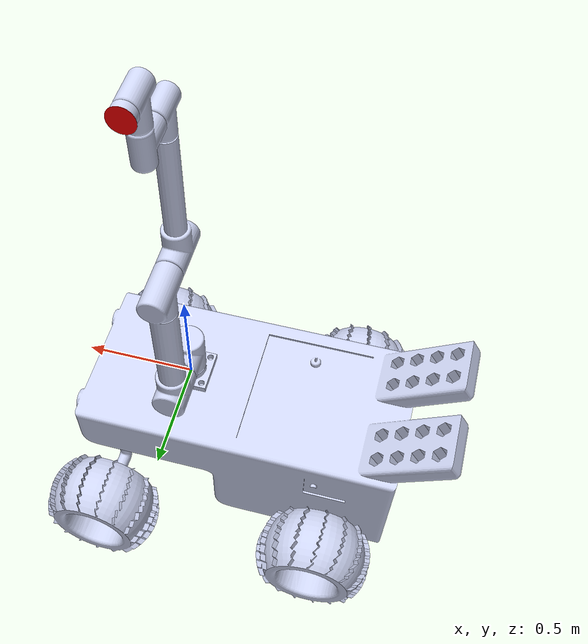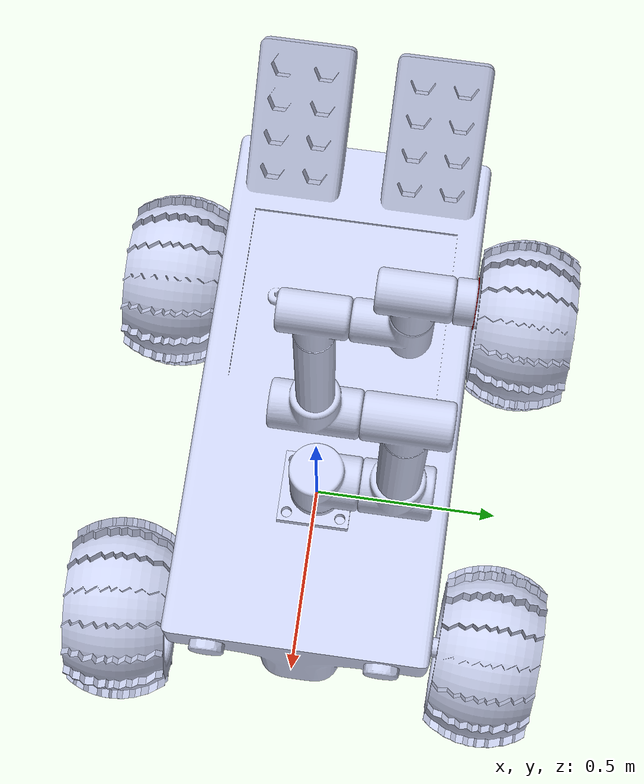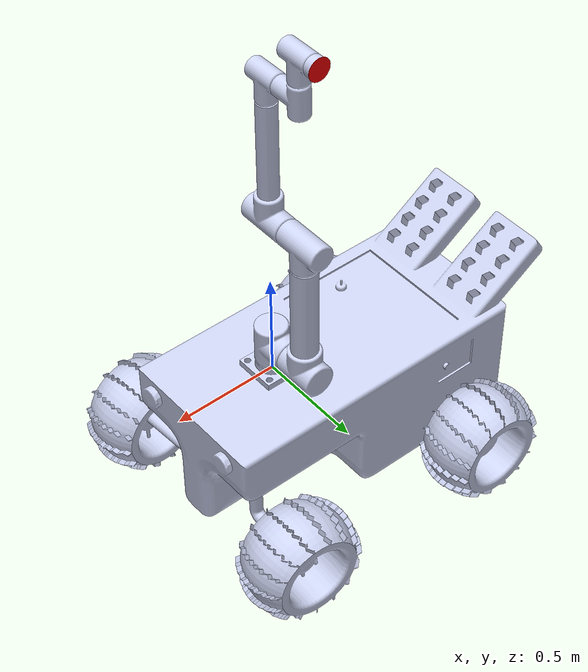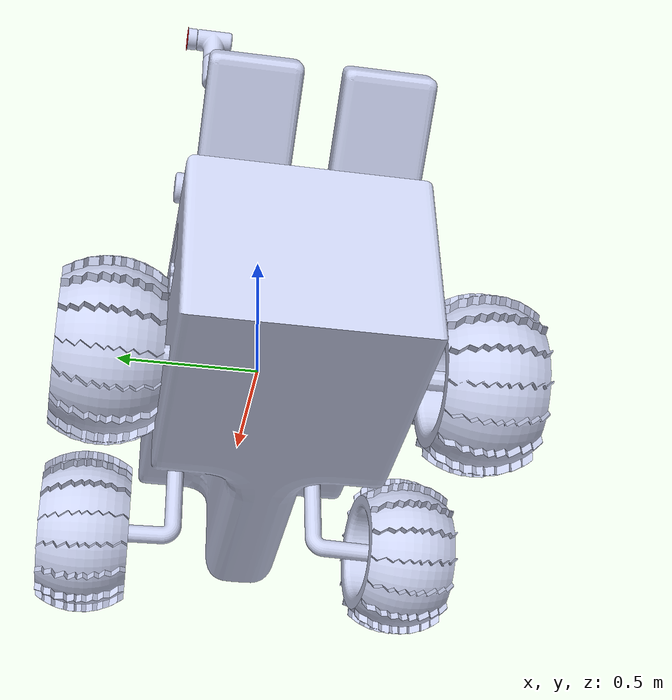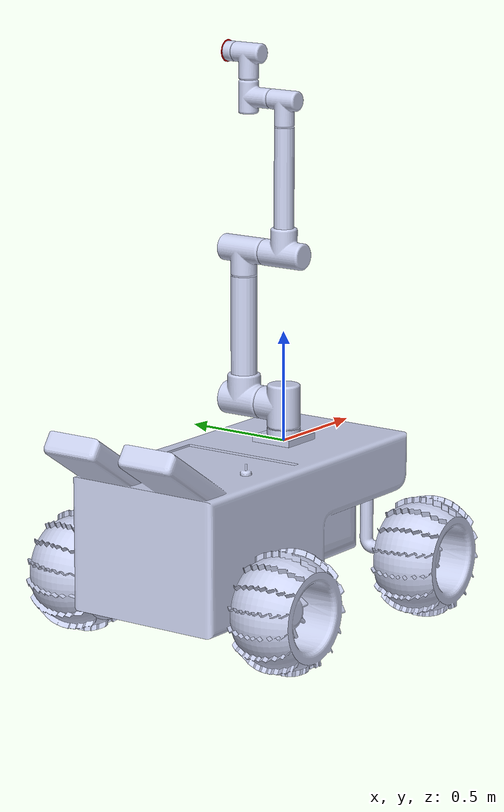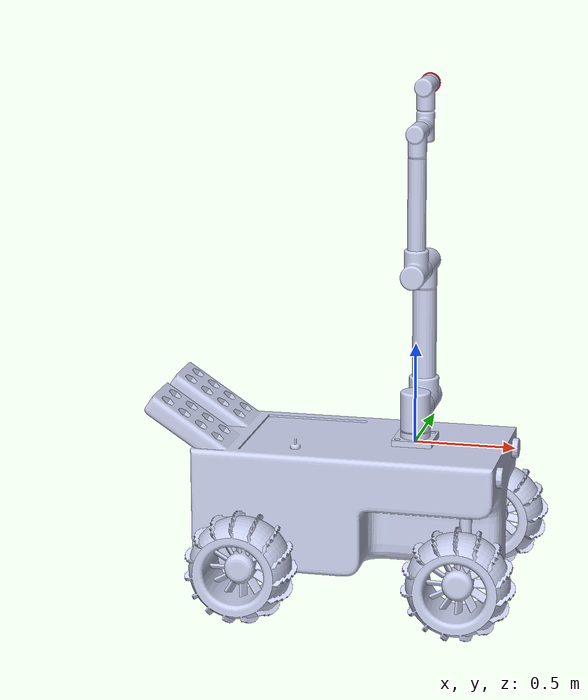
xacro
<?xml version="1.0" ?>

<robot
  name="arm_assm" xmlns:xacro="http://ros.org/wiki/xacro">

<link name="dummy_link"></link>

<joint name="dummy_joint" type="fixed">
    <origin rpy="0 0 0" xyz="0 0 0" />
    <parent link="dummy_link"/>
    <child link="base_link"/>
</joint>

<joint name="dummy_joint_2" type="fixed">
    <origin rpy="0 0 0" xyz="-0.3 0 -0.6" />
    <parent link="dummy_link"/>
    <child link="rover_link"/>
</joint>

  <link
    name="base_link">
    <inertial>
      <origin
        xyz="-1.16898314431282E-17 0.0246663904136742 -2.20926297305585E-17"
        rpy="0 0 0" />
      <mass
        value="1.64532075864635" />
      <inertia
        ixx="0.00471040512909721"
        ixy="-1.575622405618E-19"
        ixz="-6.88214269644119E-19"
        iyy="0.00852722796961167"
        iyz="-3.13183948941274E-19"
        izz="0.00471040512909721" />
    </inertial>
    <visual>
      <origin
        xyz="0 0 0"
        rpy="0 0 0" />
      <geometry>
        <mesh
          filename="package://arm_assm/meshes/base_link.STL" />
      </geometry>
      <material
        name="">
        <color
          rgba="0.792156862745098 0.819607843137255 0.933333333333333 1" />
      </material>
    </visual>
    <collision>
      <origin
        xyz="0 0 0"
        rpy="0 0 0" />
      <geometry>
        <mesh
          filename="package://arm_assm/meshes/base_link.STL" />
      </geometry>
    </collision>
  </link>
  <link
    name="motor_1">
    <inertial>
      <origin
        xyz="0.0197589805657042 0.100000000002137 1.08683469154557E-09"
        rpy="0 0 0" />
      <mass
        value="4.50292366955068" />
      <inertia
        ixx="0.0194849736698928"
        ixy="-1.42221514786599E-12"
        ixz="-3.38003199905241E-09"
        iyy="0.0181382205751192"
        iyz="1.51648171559924E-09"
        izz="0.0244008970807546" />
    </inertial>
    <visual>
      <origin
        xyz="0 0 0"
        rpy="0 0 0" />
      <geometry>
        <mesh
          filename="package://arm_assm/meshes/motor_1.STL" />
      </geometry>
      <material
        name="">
        <color
          rgba="0.792156862745098 0.819607843137255 0.933333333333333 1" />
      </material>
    </visual>
    <collision>
      <origin
        xyz="0 0 0"
        rpy="0 0 0" />
      <geometry>
        <mesh
          filename="package://arm_assm/meshes/motor_1.STL" />
      </geometry>
    </collision>
  </link>
  <joint
    name="joint_1"
    type="revolute">
    <origin
      xyz="0 0 0.06"
      rpy="1.5708 0 1.5716" />
    <parent
      link="base_link" />
    <child
      link="motor_1" />
    <axis
      xyz="0 1 0" />
    <limit
      lower="-6.14"
      upper="6.14"
      effort="0.0"
      velocity="3.2" />
  </joint>
  <link
    name="connector_1">
    <inertial>
      <origin
        xyz="0.313119444035058 0.110304452172137 -1.9126070643902E-08"
        rpy="0 0 0" />
      <mass
        value="12.8402337197017" />
      <inertia
        ixx="0.0421704102972762"
        ixy="-1.05916142578512E-11"
        ixz="-5.54192514676755E-09"
        iyy="0.118368247816807"
        iyz="3.66110869310707E-05"
        izz="0.132138508946554" />
    </inertial>
    <visual>
      <origin
        xyz="0 0 0"
        rpy="0 0 0" />
      <geometry>
        <mesh
          filename="package://arm_assm/meshes/connector_1.STL" />
      </geometry>
      <material
        name="">
        <color
          rgba="0.792156862745098 0.819607843137255 0.933333333333333 1" />
      </material>
    </visual>
    <collision>
      <origin
        xyz="0 0 0"
        rpy="0 0 0" />
      <geometry>
        <mesh
          filename="package://arm_assm/meshes/connector_1.STL" />
      </geometry>
    </collision>
  </link>
  <joint
    name="connection_1"
    type="revolute">
    <origin
      xyz="0.1097 0.1 0"
      rpy="3.1416 0 1.5708" />
    <parent
      link="motor_1" />
    <child
      link="connector_1" />
    <axis
      xyz="0 1 0" />
    <limit
      lower="-6.14"
      upper="6.14"
      effort="0.0"
      velocity="3.2" />
  </joint>
  <link
    name="motor_2">
    <inertial>
      <origin
        xyz="0.0201217834461761 -0.109696910419532 7.49655163817704E-08"
        rpy="0 0 0" />
      <mass
        value="3.24792997883187" />
      <inertia
        ixx="0.0135245524302969"
        ixy="2.73481130127729E-12"
        ixz="-2.16703921738411E-09"
        iyy="0.00976611745880299"
        iyz="1.65934648845429E-09"
        izz="0.0172740591714315" />
    </inertial>
    <visual>
      <origin
        xyz="0 0 0"
        rpy="0 0 0" />
      <geometry>
        <mesh
          filename="package://arm_assm/meshes/motor_2.STL" />
      </geometry>
      <material
        name="">
        <color
          rgba="0.792156862745098 0.819607843137255 0.933333333333333 1" />
      </material>
    </visual>
    <collision>
      <origin
        xyz="0 0 0"
        rpy="0 0 0" />
      <geometry>
        <mesh
          filename="package://arm_assm/meshes/motor_2.STL" />
      </geometry>
    </collision>
  </link>
  <joint
    name="joint_2"
    type="revolute">
    <origin
      xyz="0.69 0 0.00053788"
      rpy="-0.0048764 0.0027937 -1.3623E-05" />
    <parent
      link="connector_1" />
    <child
      link="motor_2" />
    <axis
      xyz="0 -1 0" />
    <limit
      lower="-6.14"
      upper="6.14"
      effort="0.0"
      velocity="3.2" />
  </joint>
  <link
    name="connector_2">
    <inertial>
      <origin
        xyz="-3.1784947935893E-07 0.332123883468186 1.88166395568255E-08"
        rpy="0 0 0" />
      <mass
        value="4.32164128406196" />
      <inertia
        ixx="0.0533313806166958"
        ixy="-1.17364634768036E-11"
        ixz="7.80496640541187E-05"
        iyy="0.00563517893849937"
        iyz="-1.40368744696244E-10"
        izz="0.0545463725985363" />
    </inertial>
    <visual>
      <origin
        xyz="0 0 0"
        rpy="0 0 0" />
      <geometry>
        <mesh
          filename="package://arm_assm/meshes/connector_2.STL" />
      </geometry>
      <material
        name="">
        <color
          rgba="0.792156862745098 0.819607843137255 0.933333333333333 1" />
      </material>
    </visual>
    <collision>
      <origin
        xyz="0 0 0"
        rpy="0 0 0" />
      <geometry>
        <mesh
          filename="package://arm_assm/meshes/connector_2.STL" />
      </geometry>
    </collision>
  </link>
  <joint
    name="connection_2"
    type="fixed">
    <origin
      xyz="0.12 -0.1097 0"
      rpy="0 -0.061079 -1.5708" />
    <parent
      link="motor_2" />
    <child
      link="connector_2" />
    <axis
      xyz="0 0 0" />
    <limit
      lower="0"
      upper="0"
      effort="0"
      velocity="0" />
  </joint>
  <link
    name="motor_3">
    <inertial>
      <origin
        xyz="-0.0923361653823989 -1.40477589338772E-07 7.06999671480635E-09"
        rpy="0 0 0" />
      <mass
        value="1.45886497225481" />
      <inertia
        ixx="0.00273661793160698"
        ixy="1.19740093785493E-11"
        ixz="-1.14099280093902E-10"
        iyy="0.00356775665909906"
        iyz="7.26906155233847E-09"
        izz="0.00479273523491974" />
    </inertial>
    <visual>
      <origin
        xyz="0 0 0"
        rpy="0 0 0" />
      <geometry>
        <mesh
          filename="package://arm_assm/meshes/motor_3.STL" />
      </geometry>
      <material
        name="">
        <color
          rgba="0.792156862745098 0.819607843137255 0.933333333333333 1" />
      </material>
    </visual>
    <collision>
      <origin
        xyz="0 0 0"
        rpy="0 0 0" />
      <geometry>
        <mesh
          filename="package://arm_assm/meshes/motor_3.STL" />
      </geometry>
    </collision>
  </link>
  <joint
    name="joint_3"
    type="revolute">
    <origin
      xyz="-0.074848 0.57 0.004788"
      rpy="-0.0076631 0.063883 0" />
    <parent
      link="connector_2" />
    <child
      link="motor_3" />
    <axis
      xyz="1 0 0" />
    <limit
      lower="-6.14"
      upper="6.14"
      effort="0.0"
      velocity="3.2" />
  </joint>
  <link
    name="motor_4">
    <inertial>
      <origin
        xyz="-0.0932828541921538 -1.41611363940752E-07 7.60188700182907E-09"
        rpy="0 0 0" />
      <mass
        value="1.4588650259024" />
      <inertia
        ixx="0.00273661790857383"
        ixy="-2.18892737917E-12"
        ixz="-1.09289693269471E-10"
        iyy="0.00356775664445871"
        iyz="7.29448633866116E-09"
        izz="0.00479273519243366" />
    </inertial>
    <visual>
      <origin
        xyz="0 0 0"
        rpy="0 0 0" />
      <geometry>
        <mesh
          filename="package://arm_assm/meshes/motor_4.STL" />
      </geometry>
      <material
        name="">
        <color
          rgba="0.792156862745098 0.819607843137255 0.933333333333333 1" />
      </material>
    </visual>
    <collision>
      <origin
        xyz="0 0 0"
        rpy="0 0 0" />
      <geometry>
        <mesh
          filename="package://arm_assm/meshes/motor_4.STL" />
      </geometry>
    </collision>
  </link>
  <joint
    name="joint_4"
    type="revolute">
    <origin
      xyz="-0.12 0.074054 0"
      rpy="-3.1401 0 -1.5708" />
    <parent
      link="motor_3" />
    <child
      link="motor_4" />
    <axis
      xyz="-1 0 0" />
    <limit
      lower="-6.14"
      upper="6.14"
      effort="0.0"
      velocity="3.2" />
  </joint>
  <link
    name="motor_5">
    <inertial>
      <origin
        xyz="3.82845447843838E-08 0.0174482437078256 -1.54958864542198E-05"
        rpy="0 0 0" />
      <mass
        value="0.209087747877943" />
      <inertia
        ixx="0.00014041702496199"
        ixy="-1.2048459882536E-10"
        ixz="1.91991859700716E-10"
        iyy="0.000232747880649988"
        iyz="4.87668242184021E-08"
        izz="0.000140339315643002" />
    </inertial>
    <visual>
      <origin
        xyz="0 0 0"
        rpy="0 0 0" />
      <geometry>
        <mesh
          filename="package://arm_assm/meshes/motor_5.STL" />
      </geometry>
      <material
        name="">
        <color
          rgba="0.792156862745098 0.819607843137255 0.933333333333333 1" />
      </material>
    </visual>

     <!-- Added cylinder description with color -->
  <visual>
    <geometry>
      <cylinder length="0.001" radius="0.05"/>
    </geometry>
    <!-- Material for the cylinder -->
    <material name="cylinder_material">
      <color rgba="1.0 0.0 0.0 1.0"/> <!-- Adjust RGBA values as needed -->
    </material>
    <origin rpy="1.57 0 0" xyz="0 0.04 0"/> <!-- Adjust position as needed -->
  </visual>

    <collision>
      <origin
        xyz="0 0 0"
        rpy="0 0 0" />
      <geometry>
        <mesh
          filename="package://arm_assm/meshes/motor_5.STL" />
      </geometry>
    </collision>
  </link>
  <joint
    name="joint_5"
    type="revolute">
    <origin
      xyz="-0.12095 0.075 0"
      rpy="0 -1.5277 0" />
    <parent
      link="motor_4" />
    <child
      link="motor_5" />
    <axis
      xyz="0 1 0" />
    <limit
      lower="-6.14"
      upper="6.14"
      effort="0.0"
      velocity="3.2" />
  </joint>

<!-- ROVER-->

<link
    name="rover_link">
    <inertial>
      <origin
        xyz="-0.103318260836402 0.337174820008258 0.000199834843137995"
        rpy="0 0 0" />
      <mass
        value="573.948623188988" />
      <inertia
        ixx="43.2833350834728"
        ixy="-3.05703288624718"
        ixz="0.0378529802323163"
        iyy="130.884178689706"
        iyz="-0.0135436274986689"
        izz="125.088361453142" />
    </inertial>
    <visual>
      <origin
        xyz="0 0 0"
        rpy="0 0 0" />
      <geometry>
        <mesh
          filename="package://arm_assm/meshes/rover_link.STL" />
      </geometry>
      <material
        name="">
        <color
          rgba="0.792156862745098 0.819607843137255 0.933333333333333 1" />
      </material>
    </visual>
    <collision>
      <origin
        xyz="0 0 0"
        rpy="0 0 0" />
      <geometry>
        <mesh
          filename="package://arm_assm/meshes/rover_link.STL" />
      </geometry>
    </collision>
  </link>
  <link
    name="rear_axle">
    <inertial>
      <origin
        xyz="0.000708783102626985 -1.90736315630602E-13 2.0961010704923E-13"
        rpy="0 0 0" />
      <mass
        value="69.3421943492993" />
      <inertia
        ixx="2.43559666302255"
        ixy="-3.53704390808948E-14"
        ixz="-1.96383789221807E-13"
        iyy="2.14854026998397"
        iyz="1.52472468329577E-13"
        izz="2.1485402699841" />
    </inertial>
    <visual>
      <origin
        xyz="0 0 0"
        rpy="0 0 0" />
      <geometry>
        <mesh
          filename="package://arm_assm/meshes/rear_axle.STL" />
      </geometry>
      <material
        name="">
        <color
          rgba="0.792156862745098 0.819607843137255 0.933333333333333 1" />
      </material>
    </visual>
    <collision>
      <origin
        xyz="0 0 0"
        rpy="0 0 0" />
      <geometry>
        <mesh
          filename="package://arm_assm/meshes/rear_axle.STL" />
      </geometry>
    </collision>
  </link>
  <joint
    name="rear_axle_joint"
    type="continuous">
    <origin
      xyz="-0.45 0 0.08"
      rpy="1.5708 0 1.5708" />
    <parent
      link="rover_link" />
    <child
      link="rear_axle" />
    <axis
      xyz="1 0 0" />
  </joint>
  <link
    name="right_front_steer">
    <inertial>
      <origin
        xyz="0 0.0987183418958318 0.0712956744515366"
        rpy="0 0 0" />
      <mass
        value="1.49471513985928" />
      <inertia
        ixx="0.0238179318734172"
        ixy="3.63207727782644E-18"
        ixz="-1.14383329197221E-17"
        iyy="0.0124988941819121"
        iyz="0.00732413688628523"
        izz="0.0119916595044418" />
    </inertial>
    <visual>
      <origin
        xyz="0 0 0"
        rpy="0 0 0" />
      <geometry>
        <mesh
          filename="package://arm_assm/meshes/right_front_steer.STL" />
      </geometry>
      <material
        name="">
        <color
          rgba="0.792156862745098 0.819607843137255 0.933333333333333 1" />
      </material>
    </visual>
    <collision>
      <origin
        xyz="0 0 0"
        rpy="0 0 0" />
      <geometry>
        <mesh
          filename="package://arm_assm/meshes/right_front_steer.STL" />
      </geometry>
    </collision>
  </link>
  <joint
    name="right_front_steer_joint"
    type="continuous">
    <origin
      xyz="0.6 -0.25 0.05"
      rpy="1.5708 0 0.06131" />
    <parent
      link="rover_link" />
    <child
      link="right_front_steer" />
    <axis
      xyz="0 1 0" />
    <limit
      lower="0"
      upper="0"
      effort="0"
      velocity="0" />
  </joint>
  <link
    name="right_front_wheel">
    <inertial>
      <origin
        xyz="-0.18471755067684 -5.71287461781367E-12 3.35409477969506E-12"
        rpy="0 0 0" />
      <mass
        value="33.1593933498922" />
      <inertia
        ixx="1.21693961849137"
        ixy="-1.0153623818468E-11"
        ixz="7.93193635773015E-12"
        iyy="0.797444327502923"
        iyz="-8.69664637612871E-13"
        izz="0.79744432749925" />
    </inertial>
    <visual>
      <origin
        xyz="0 0 0"
        rpy="0 0 0" />
      <geometry>
        <mesh
          filename="package://arm_assm/meshes/right_front_wheel.STL" />
      </geometry>
      <material
        name="">
        <color
          rgba="0.792156862745098 0.819607843137255 0.933333333333333 1" />
      </material>
    </visual>
    <collision>
      <origin
        xyz="0 0 0"
        rpy="0 0 0" />
      <geometry>
        <mesh
          filename="package://arm_assm/meshes/right_front_wheel.STL" />
      </geometry>
    </collision>
  </link>
  <joint
    name="right_front_wheel_joint"
    type="continuous">
    <origin
      xyz="0 0.03 0.12022"
      rpy="-1.5251 1.5708 -1.5759" />
    <parent
      link="right_front_steer" />
    <child
      link="right_front_wheel" />
    <axis
      xyz="1 0 0" />
  </joint>
  <link
    name="left_front_steer">
    <inertial>
      <origin
        xyz="2.22044604925031E-16 0.0987183418958317 0.0712956744515366"
        rpy="0 0 0" />
      <mass
        value="1.49471513985928" />
      <inertia
        ixx="0.0238179318734172"
        ixy="7.31836466427715E-18"
        ixz="-1.05709711817337E-17"
        iyy="0.0124988941819121"
        iyz="0.00732413688628522"
        izz="0.0119916595044418" />
    </inertial>
    <visual>
      <origin
        xyz="0 0 0"
        rpy="0 0 0" />
      <geometry>
        <mesh
          filename="package://arm_assm/meshes/left_front_steer.STL" />
      </geometry>
      <material
        name="">
        <color
          rgba="0.792156862745098 0.819607843137255 0.933333333333333 1" />
      </material>
    </visual>
    <collision>
      <origin
        xyz="0 0 0"
        rpy="0 0 0" />
      <geometry>
        <mesh
          filename="package://arm_assm/meshes/left_front_steer.STL" />
      </geometry>
    </collision>
  </link>
  <joint
    name="left_front_steer_joint"
    type="continuous">
    <origin
      xyz="0.6 0.25 0.05"
      rpy="1.5708 0 3.0983" />
    <parent
      link="rover_link" />
    <child
      link="left_front_steer" />
    <axis
      xyz="0 1 0" />
    <limit
      lower="0"
      upper="0"
      effort="0"
      velocity="0" />
  </joint>
  <link
    name="left_front_wheel">
    <inertial>
      <origin
        xyz="-0.1493710630554 -3.17523785042795E-14 4.88309392920883E-12"
        rpy="0 0 0" />
      <mass
        value="33.1593933498605" />
      <inertia
        ixx="1.21693961849115"
        ixy="9.01806407327399E-13"
        ixz="9.63588930869008E-12"
        iyy="0.797444327499953"
        iyz="-5.80122159078017E-13"
        izz="0.797444327501309" />
    </inertial>
    <visual>
      <origin
        xyz="0 0 0"
        rpy="0 0 0" />
      <geometry>
        <mesh
          filename="package://arm_assm/meshes/left_front_wheel.STL" />
      </geometry>
      <material
        name="">
        <color
          rgba="0.792156862745098 0.819607843137255 0.933333333333333 1" />
      </material>
    </visual>
    <collision>
      <origin
        xyz="0 0 0"
        rpy="0 0 0" />
      <geometry>
        <mesh
          filename="package://arm_assm/meshes/left_front_wheel.STL" />
      </geometry>
    </collision>
  </link>
  <joint
    name="left_front_wheel_joint"
    type="continuous">
    <origin
      xyz="0 0.03 0.15556"
      rpy="1.0904 1.5708 -2.9361" />
    <parent
      link="left_front_steer" />
    <child
      link="left_front_wheel" />
    <axis
      xyz="1 0 0" />
  </joint>

  <!-- END ROVER-->

 <ros2_control name="GazeboSystem" type="system">
 <hardware>
     <plugin>gazebo_ros2_control/GazeboSystem</plugin>
 </hardware>

 # PositionControllers

 <joint name="joint_1">
     <command_interface name="position">
         <param name="min">-6.28</param>
         <param name="max">6.28</param>
     </command_interface>
     <state_interface name="position"/>
     <state_interface name="velocity"/>
 </joint>

 <joint name="connection_1">
     <command_interface name="position">
         <param name="min">-6.28</param>
         <param name="max">6.28</param>
     </command_interface>
     <state_interface name="position"/>
     <state_interface name="velocity"/>
 </joint>

 <joint name="joint_2">
     <command_interface name="position">
         <param name="min">-6.28</param>
         <param name="max">6.28</param>
     </command_interface>
     <state_interface name="position"/>
     <state_interface name="velocity"/>
 </joint>

 <joint name="joint_3">
     <command_interface name="position">
         <param name="min">-6.28</param>
         <param name="max">6.28</param>
     </command_interface>
     <state_interface name="position"/>
     <state_interface name="velocity"/>
 </joint>

 <joint name="joint_4">
     <command_interface name="position">
         <param name="min">-6.28</param>
         <param name="max">6.28</param>
     </command_interface>
     <state_interface name="position"/>
     <state_interface name="velocity"/>
 </joint>

 <joint name="joint_5">
     <command_interface name="position">
         <param name="min">-6.28</param>
         <param name="max">6.28</param>
     </command_interface>
     <state_interface name="position"/>
     <state_interface name="velocity"/>
 </joint>

 # velocity controllers

 <joint name="joint_1">
     <command_interface name="velocity">
         <param name="min">-1000.0</param>
         <param name="max">1000.0</param>
     </command_interface>
     <state_interface name="position"/>
     <state_interface name="velocity"/>
 </joint>

 <joint name="connection_1">
     <command_interface name="velocity">
         <param name="min">-1000.0</param>
         <param name="max">1000.0</param>
     </command_interface>
     <state_interface name="position"/>
     <state_interface name="velocity"/>
 </joint>

 <joint name="joint_2">
     <command_interface name="velocity">
         <param name="min">-1000.0</param>
         <param name="max">1000.0</param>
     </command_interface>
     <state_interface name="position"/>
     <state_interface name="velocity"/>
 </joint>

 <joint name="joint_3">
     <command_interface name="velocity">
         <param name="min">-1000.0</param>
         <param name="max">1000.0</param>
     </command_interface>
     <state_interface name="position"/>
     <state_interface name="velocity"/>
 </joint>

 <joint name="joint_4">
     <command_interface name="velocity">
         <param name="min">-1000.0</param>
         <param name="max">1000.0</param>
     </command_interface>
     <state_interface name="position"/>
     <state_interface name="velocity"/>
 </joint>

 <joint name="joint_5">
     <command_interface name="velocity">
         <param name="min">-1000.0</param>
         <param name="max">1000.0</param>
     </command_interface>
     <state_interface name="position"/>
     <state_interface name="velocity"/>
 </joint>

<!-- ROVER CTRLS -->

 # Velocity Controllers

 <joint name="rear_axle_joint">
     <command_interface name="velocity">
         <param name="min">-1000.0</param>
         <param name="max">1000.0</param>
     </command_interface>
     <state_interface name="position"/>
     <state_interface name="velocity"/>
 </joint>

 # Velocity Controllers

 <joint name="left_front_wheel_joint">
     <command_interface name="velocity">
         <param name="min">-1000.0</param>
         <param name="max">1000.0</param>
     </command_interface>
     <state_interface name="position"/>
     <state_interface name="velocity"/>
 </joint>

 # Velocity Controllers

 <joint name="right_front_wheel_joint">
     <command_interface name="velocity">
         <param name="min">-1000.0</param>
         <param name="max">1000.0</param>
     </command_interface>
     <state_interface name="position"/>
     <state_interface name="velocity"/>
 </joint>

# Position Controller
 <joint name="left_front_steer_joint">
     <command_interface name="position">
         <param name="min">-3.14</param>
         <param name="max">3.14</param>
     </command_interface>
     <state_interface name="position"/>
     <state_interface name="velocity"/>
 </joint>

# Position Controller
 <joint name="right_front_steer_joint">
     <command_interface name="position">
         <param name="min">-3.14</param>
         <param name="max">3.14</param>
     </command_interface>
     <state_interface name="position"/>
     <state_interface name="velocity"/>
 </joint>

 </ros2_control>

  <gazebo>
    <plugin filename="libgazebo_ros2_control.so" name="gazebo_ros2_control">
        <parameters>$(find arm_assm)/config/control.yaml</parameters>
    </plugin>
</gazebo>

  <!--  VACUUM GRIPPER -->

  <gazebo>
  <plugin name='vacuum_gripper' filename='libgazebo_ros_vacuum_gripper.so'>

    <ros>

      <namespace>/vacuum_gripper</namespace>

      <!-- Remapping service and topic names -->
      <remapping>switch:=custom_switch</remapping>
      <remapping>grasping:=custom_grasping</remapping>
    </ros>

    <!-- Link associated with gripper -->
    <link_name>motor_5</link_name>

    <!-- Max distance to attract entities -->
    <max_distance>10.0</max_distance>

    <!-- List of entities to be not attracted by the gripper -->
    <fixed>ground_plane</fixed>
    <fixed>wall</fixed>
     <fixed>bowl</fixed>

  </plugin>
</gazebo>

  <xacro:macro name="tyre_color">
    <visual>
    <material>
        <ambient>0.1 0.1 0.1 1</ambient>
        <diffuse>0.1 0.1 0.1 1</diffuse>
        <specular>0.1 0.1 0.1 1</specular>
        <emissive>0 0 0 0</emissive>
    </material>
    </visual>
</xacro:macro>

  <xacro:macro name="axle_color">
    <visual>
    <material>
        <ambient>0.3 0.3 0.3 1</ambient>
        <diffuse>0.3 0.3 0.3 1</diffuse>
        <specular>0.3 0.3 0.3 1</specular>
        <emissive>0 0 0 0</emissive>
    </material>
    </visual>
</xacro:macro>

    <xacro:macro name="body_color">
    <visual>
    <material>
        <ambient>0.8 0.56 0.1 1</ambient>
        <diffuse>0.8 0.56 0.1 1</diffuse>
        <specular>0.1 0.1 0.1 1</specular>
        <emissive>0 0 0 0</emissive>
    </material>
    </visual>
</xacro:macro>

    <xacro:macro name="arm_color_light">
    <visual>
    <material>
        <ambient> 0.5 0.5 0.5 1</ambient>
        <diffuse> 0.5 0.5 0.5 1</diffuse>
        <specular>0.1 0.1 0.1 1</specular>
        <emissive>0 0 0 0</emissive>
    </material>
    </visual>
</xacro:macro>

    <xacro:macro name="arm_color_dark">
    <visual>
    <material>
        <ambient>0.2 0.2 0.2 1</ambient>
        <diffuse>0.2 0.2 0.2 1</diffuse>
        <specular>0.1 0.1 0.1 1</specular>
        <emissive>0 0 0 0</emissive>
    </material>
    </visual>
</xacro:macro>

  <gazebo reference="base_link">
    <xacro:axle_color />
</gazebo>

    <gazebo reference="right_front_wheel">
    <xacro:tyre_color />
</gazebo>

  <gazebo reference="left_front_wheel">
    <xacro:tyre_color />
</gazebo>

  <gazebo reference="rear_axle">
    <xacro:tyre_color />
</gazebo>

    <gazebo reference="rover_link">
    <xacro:body_color />
</gazebo>
        <gazebo reference="left_front_steer">
    <xacro:axle_color />
</gazebo>
        <gazebo reference="right_front_steer">
    <xacro:axle_color />
</gazebo>

        <gazebo reference="motor_1">
    <xacro:arm_color_dark />
</gazebo>

        <gazebo reference="motor_2">
    <xacro:arm_color_dark />
</gazebo>

        <gazebo reference="motor_3">
    <xacro:arm_color_dark />
</gazebo>

        <gazebo reference="motor_4">
    <xacro:arm_color_light />
</gazebo>

        <gazebo reference="motor_5">
    <xacro:arm_color_dark/>
</gazebo>

        <gazebo reference="connector_1">
    <xacro:arm_color_light />
</gazebo>

        <gazebo reference="connector_2">
    <xacro:arm_color_light />
</gazebo>
</robot>
